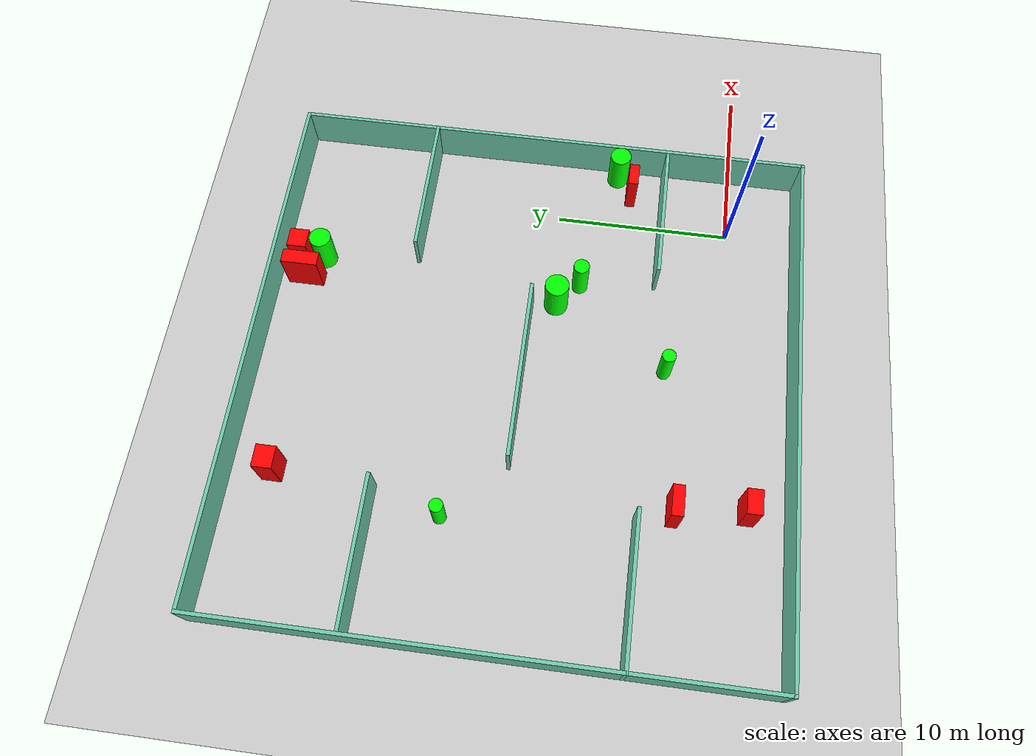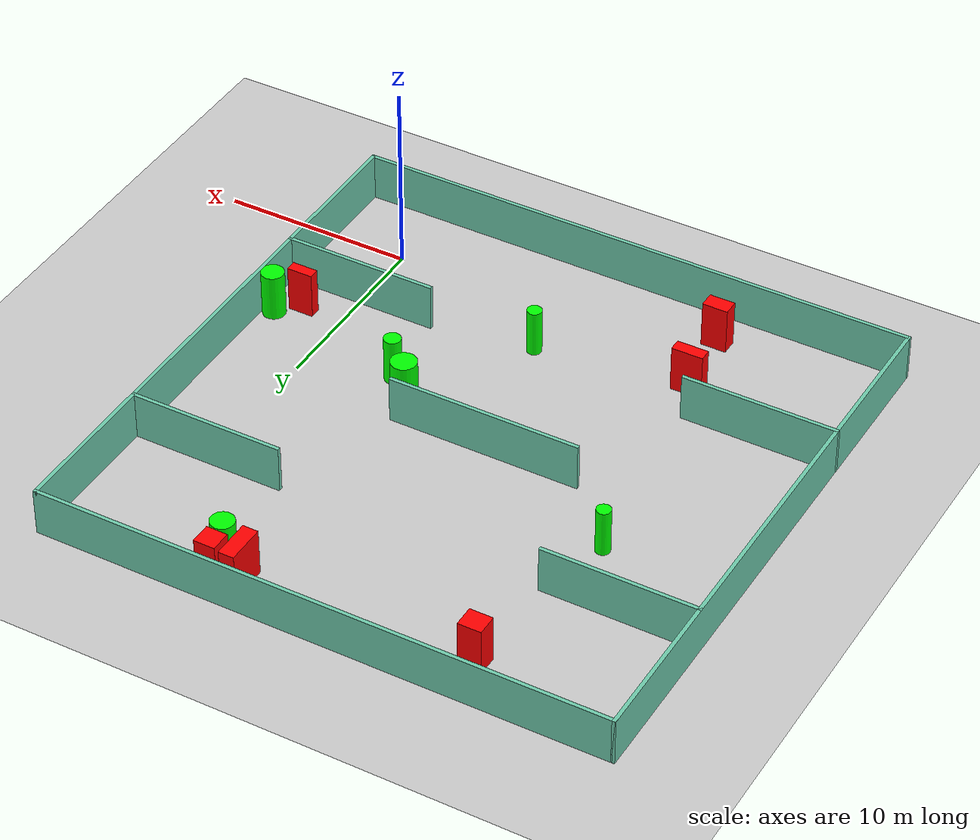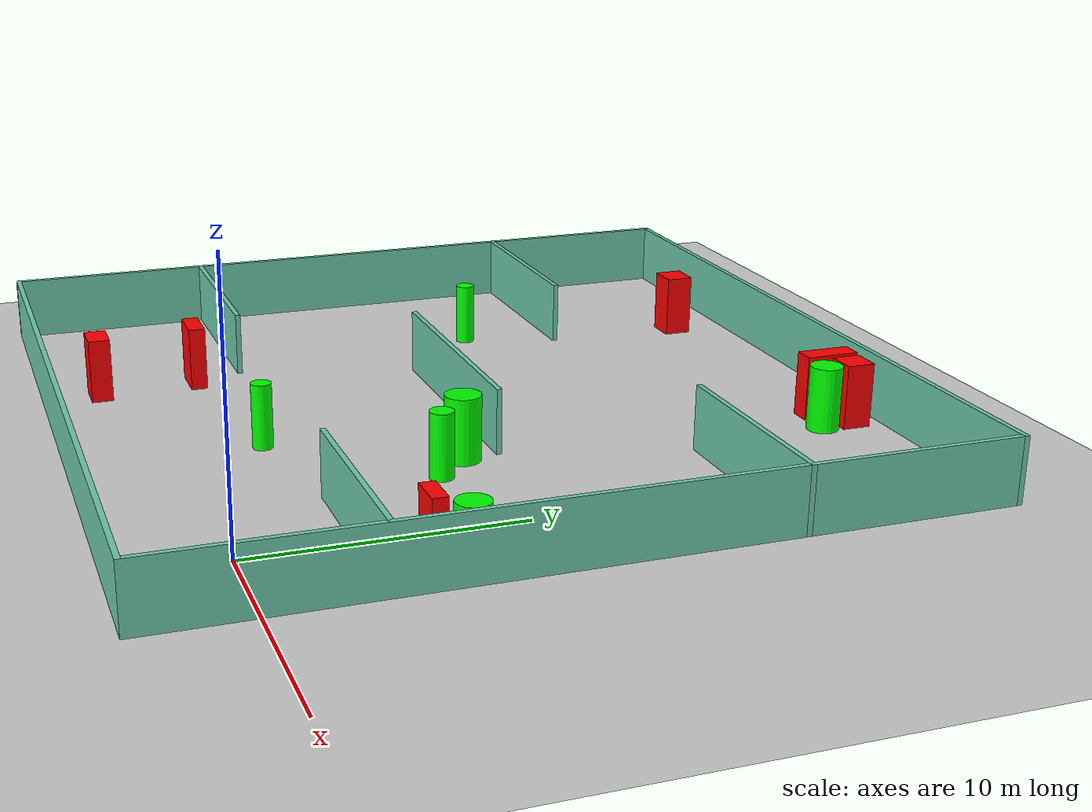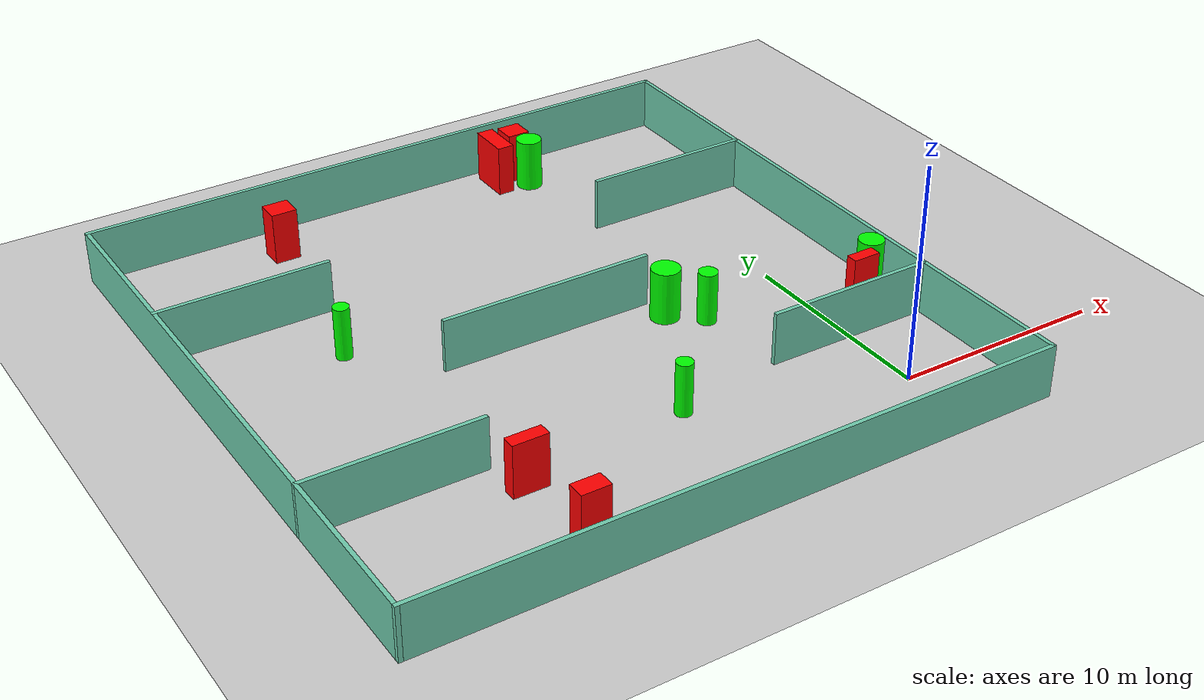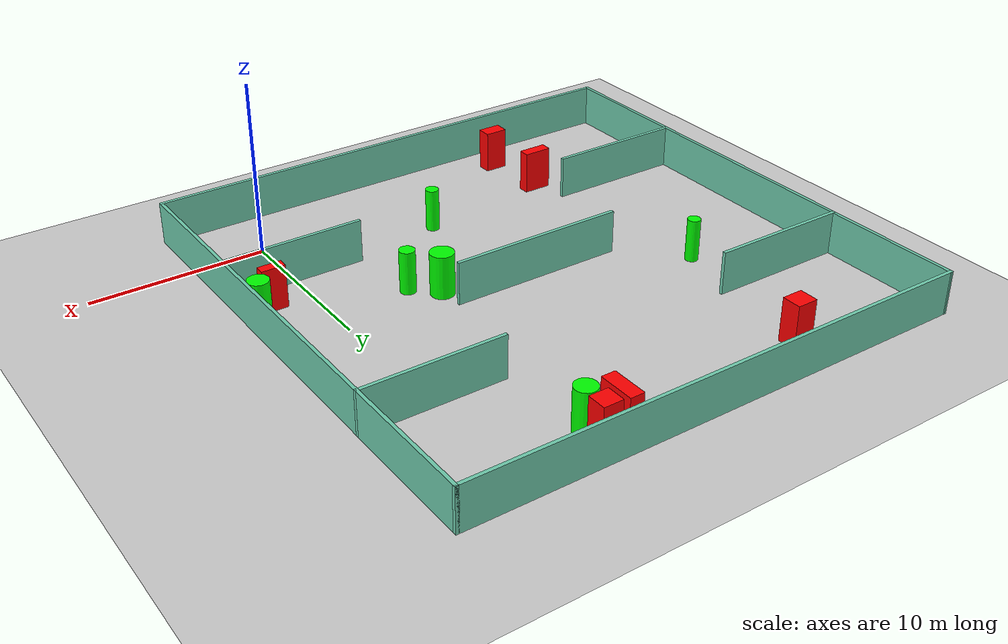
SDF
<sdf version="1.7">
 <world name="default">
  <light name="sun" type="directional">
   <pose>0 0 10 0 -0 0</pose>
   <diffuse>0.8 0.8 0.8 1</diffuse>
   <specular>0.2 0.2 0.2 1</specular>
   <attenuation>
    <range>1000</range>
    <constant>0.9</constant>
    <linear>0.01</linear>
    <quadratic>0.001</quadratic>
   </attenuation>
   <direction>-0.5 0.1 -0.9</direction>
   <spot><inner_angle>0</inner_angle><outer_angle>0</outer_angle><falloff>0</falloff></spot>
  </light>
  <model name="ground_plane">
   <static>1</static>
   <link name="link">
    <collision name="collision">
     <geometry><plane><normal>0 0 1</normal><size>100 100</size></plane></geometry>
     <surface>
      <contact><collide_bitmask>65535</collide_bitmask></contact>
      <friction><ode><mu>100</mu><mu2>50</mu2></ode></friction>
     </surface>
    </collision>
    <visual name="visual">
     <cast_shadows>0</cast_shadows>
     <geometry><plane><normal>0 0 1</normal><size>100 100</size></plane></geometry>
     <material>
      <script><uri>file://media/materials/scripts/gazebo.material</uri><name>Gazebo/Grey</name></script>
     </material>
    </visual>
   </link>
  </model>
  <gravity>0 0 -9.8</gravity>
  <magnetic_field>6e-06 2.3e-05 -4.2e-05</magnetic_field>
  <atmosphere type="adiabatic"/>
  <physics type="ode">
   <max_step_size>0.001</max_step_size>
   <real_time_factor>1</real_time_factor>
   <real_time_update_rate>1000</real_time_update_rate>
  </physics>
  <scene><ambient>0.4 0.4 0.4 1</ambient><background>0.7 0.7 0.7 1</background><shadows>1</shadows></scene>
  <spherical_coordinates>
   <surface_model>EARTH_WGS84</surface_model>
   <latitude_deg>0</latitude_deg>
   <longitude_deg>0</longitude_deg>
   <elevation>0</elevation>
   <heading_deg>0</heading_deg>
  </spherical_coordinates>
  <model name="my_base_walls">
   <link name="Wall_10">
    <collision name="Wall_10_Collision">
     <geometry><box><size>8.2 0.2 2.5</size></box></geometry>
     <pose>0 0 1.25 0 -0 0</pose>
    </collision>
    <visual name="Wall_10_Visual">
     <pose>0 0 1.25 0 -0 0</pose>
     <geometry><box><size>8.2 0.2 2.5</size></box></geometry>
     <material>
      <script><uri>file://media/materials/scripts/gazebo.material</uri><name>Gazebo/Grey</name></script>
      <ambient>0.435294 0.796078 0.67451 1</ambient>
     </material>
     <meta><layer>0</layer></meta>
    </visual>
    <pose>-11 -7 0 0 -0 0</pose>
   </link>
   <link name="Wall_12">
    <collision name="Wall_12_Collision">
     <geometry><box><size>8.2 0.2 2.5</size></box></geometry>
     <pose>0 0 1.25 0 -0 0</pose>
    </collision>
    <visual name="Wall_12_Visual">
     <pose>0 0 1.25 0 -0 0</pose>
     <geometry><box><size>8.2 0.2 2.5</size></box></geometry>
     <material>
      <script><uri>file://media/materials/scripts/gazebo.material</uri><name>Gazebo/Grey</name></script>
      <ambient>0.435294 0.796078 0.67451 1</ambient>
     </material>
     <meta><layer>0</layer></meta>
    </visual>
    <pose>-11 7 0 0 -0 0</pose>
   </link>
   <link name="Wall_14">
    <collision name="Wall_14_Collision">
     <geometry><box><size>8.2 0.2 2.5</size></box></geometry>
     <pose>0 0 1.25 0 -0 0</pose>
    </collision>
    <visual name="Wall_14_Visual">
     <pose>0 0 1.25 0 -0 0</pose>
     <geometry><box><size>8.2 0.2 2.5</size></box></geometry>
     <material>
      <script><uri>file://media/materials/scripts/gazebo.material</uri><name>Gazebo/Grey</name></script>
      <ambient>0.435294 0.796078 0.67451 1</ambient>
     </material>
     <meta><layer>0</layer></meta>
    </visual>
    <pose>11 7 0 0 -0 3.14159</pose>
   </link>
   <link name="Wall_16">
    <collision name="Wall_16_Collision">
     <geometry><box><size>10.2 0.2 2.5</size></box></geometry>
     <pose>0 0 1.25 0 -0 0</pose>
    </collision>
    <visual name="Wall_16_Visual">
     <pose>0 0 1.25 0 -0 0</pose>
     <geometry><box><size>10.2 0.2 2.5</size></box></geometry>
     <material>
      <script><uri>file://media/materials/scripts/gazebo.material</uri><name>Gazebo/Grey</name></script>
      <ambient>0.435294 0.796078 0.67451 1</ambient>
     </material>
     <meta><layer>0</layer></meta>
    </visual>
    <pose>0 0 0 0 -0 3.14159</pose>
   </link>
   <link name="Wall_2">
    <collision name="Wall_2_Collision">
     <geometry><box><size>30.2 0.2 2.5</size></box></geometry>
     <pose>0 0 1.25 0 -0 0</pose>
    </collision>
    <visual name="Wall_2_Visual">
     <pose>0 0 1.25 0 -0 0</pose>
     <geometry><box><size>30.2 0.2 2.5</size></box></geometry>
     <material>
      <script><uri>file://media/materials/scripts/gazebo.material</uri><name>Gazebo/Grey</name></script>
      <ambient>0.435294 0.796078 0.67451 1</ambient>
     </material>
     <meta><layer>0</layer></meta>
    </visual>
    <pose>0 -15 0 0 -0 3.14159</pose>
   </link>
   <link name="Wall_3">
    <collision name="Wall_3_Collision">
     <geometry><box><size>30.2 0.2 2.5</size></box></geometry>
     <pose>0 0 1.25 0 -0 0</pose>
    </collision>
    <visual name="Wall_3_Visual">
     <pose>0 0 1.25 0 -0 0</pose>
     <geometry><box><size>30.2 0.2 2.5</size></box></geometry>
     <material>
      <script><uri>file://media/materials/scripts/gazebo.material</uri><name>Gazebo/Grey</name></script>
      <ambient>0.435294 0.796078 0.67451 1</ambient>
     </material>
     <meta><layer>0</layer></meta>
    </visual>
    <pose>-15 0 0 0 -0 1.5708</pose>
   </link>
   <link name="Wall_4">
    <collision name="Wall_4_Collision">
     <geometry><box><size>30.2 0.2 2.5</size></box></geometry>
     <pose>0 0 1.25 0 -0 0</pose>
    </collision>
    <visual name="Wall_4_Visual">
     <pose>0 0 1.25 0 -0 0</pose>
     <geometry><box><size>30.2 0.2 2.5</size></box></geometry>
     <material>
      <script><uri>file://media/materials/scripts/gazebo.material</uri><name>Gazebo/Grey</name></script>
      <ambient>0.435294 0.796078 0.67451 1</ambient>
     </material>
     <meta><layer>0</layer></meta>
    </visual>
    <pose>0 15 0 0 -0 0</pose>
   </link>
   <link name="Wall_6">
    <collision name="Wall_6_Collision">
     <geometry><box><size>30.2 0.2 2.5</size></box></geometry>
     <pose>0 0 1.25 0 -0 0</pose>
    </collision>
    <visual name="Wall_6_Visual">
     <pose>0 0 1.25 0 -0 0</pose>
     <geometry><box><size>30.2 0.2 2.5</size></box></geometry>
     <material>
      <script><uri>file://media/materials/scripts/gazebo.material</uri><name>Gazebo/Grey</name></script>
      <ambient>0.435294 0.796078 0.67451 1</ambient>
     </material>
     <meta><layer>0</layer></meta>
    </visual>
    <pose>15 0 0 0 -0 1.5708</pose>
   </link>
   <link name="Wall_8">
    <collision name="Wall_8_Collision">
     <geometry><box><size>8.2 0.2 2.5</size></box></geometry>
     <pose>0 0 1.25 0 -0 0</pose>
    </collision>
    <visual name="Wall_8_Visual">
     <pose>0 0 1.25 0 -0 0</pose>
     <geometry><box><size>8.2 0.2 2.5</size></box></geometry>
     <material>
      <script><uri>file://media/materials/scripts/gazebo.material</uri><name>Gazebo/Grey</name></script>
      <ambient>0.435294 0.796078 0.67451 1</ambient>
     </material>
     <meta><layer>0</layer></meta>
    </visual>
    <pose>11 -7 0 0 -0 3.14159</pose>
   </link>
   <static>1</static>
   <pose>-11 11 0 0 -0 0</pose>
  </model>
  <model name="cylinder1">
   <static>1</static>
   <link name="link">
    <inertial>
     <mass>1</mass>
     <inertia><ixx>0.5</ixx><ixy>0</ixy><ixz>0</ixz><iyy>0.5</iyy><iyz>0</iyz><izz>1</izz></inertia>
    </inertial>
    <collision name="collision">
     <geometry><cylinder><radius>0.6784949300227379</radius><length>2.5</length></cylinder></geometry>
    </collision>
    <visual name="visual">
     <geometry><cylinder><radius>0.6784949300227379</radius><length>2.5</length></cylinder></geometry>
     <material>
      <ambient>0 1 0 1</ambient>
      <diffuse>0 1 0 1</diffuse>
      <specular>0.1 0.1 0.1 1</specular>
      <emissive>0 0 0 0</emissive>
     </material>
    </visual>
   </link>
   <pose>-5.835233674920712 9.589954621143322 1.25 0 0 0</pose>
  </model>
  <model name="cylinder2">
   <static>1</static>
   <link name="link">
    <inertial>
     <mass>1</mass>
     <inertia><ixx>0.5</ixx><ixy>0</ixy><ixz>0</ixz><iyy>0.5</iyy><iyz>0</iyz><izz>1</izz></inertia>
    </inertial>
    <collision name="collision">
     <geometry><cylinder><radius>0.6163219570794598</radius><length>2.5</length></cylinder></geometry>
    </collision>
    <visual name="visual">
     <geometry><cylinder><radius>0.6163219570794598</radius><length>2.5</length></cylinder></geometry>
     <material>
      <ambient>0 1 0 1</ambient>
      <diffuse>0 1 0 1</diffuse>
      <specular>0.1 0.1 0.1 1</specular>
      <emissive>0 0 0 0</emissive>
     </material>
    </visual>
   </link>
   <pose>-4.526041789028415 23.490929784408213 1.25 0 0 0</pose>
  </model>
  <model name="cylinder3">
   <static>1</static>
   <link name="link">
    <inertial>
     <mass>1</mass>
     <inertia><ixx>0.5</ixx><ixy>0</ixy><ixz>0</ixz><iyy>0.5</iyy><iyz>0</iyz><izz>1</izz></inertia>
    </inertial>
    <collision name="collision">
     <geometry><cylinder><radius>0.37320111128188654</radius><length>2.5</length></cylinder></geometry>
    </collision>
    <visual name="visual">
     <geometry><cylinder><radius>0.37320111128188654</radius><length>2.5</length></cylinder></geometry>
     <material>
      <ambient>0 1 0 1</ambient>
      <diffuse>0 1 0 1</diffuse>
      <specular>0.1 0.1 0.1 1</specular>
      <emissive>0 0 0 0</emissive>
     </material>
    </visual>
   </link>
   <pose>-19.17269495877135 14.266017183462075 1.25 0 0 0</pose>
  </model>
  <model name="cylinder4">
   <static>1</static>
   <link name="link">
    <inertial>
     <mass>1</mass>
     <inertia><ixx>0.5</ixx><ixy>0</ixy><ixz>0</ixz><iyy>0.5</iyy><iyz>0</iyz><izz>1</izz></inertia>
    </inertial>
    <collision name="collision">
     <geometry><cylinder><radius>0.603149404939135</radius><length>2.5</length></cylinder></geometry>
    </collision>
    <visual name="visual">
     <geometry><cylinder><radius>0.603149404939135</radius><length>2.5</length></cylinder></geometry>
     <material>
      <ambient>0 1 0 1</ambient>
      <diffuse>0 1 0 1</diffuse>
      <specular>0.1 0.1 0.1 1</specular>
      <emissive>0 0 0 0</emissive>
     </material>
    </visual>
   </link>
   <pose>3.327774973461672 6.7812902954853715 1.25 0 0 0</pose>
  </model>
  <model name="cylinder5">
   <static>1</static>
   <link name="link">
    <inertial>
     <mass>1</mass>
     <inertia><ixx>0.5</ixx><ixy>0</ixy><ixz>0</ixz><iyy>0.5</iyy><iyz>0</iyz><izz>1</izz></inertia>
    </inertial>
    <collision name="collision">
     <geometry><cylinder><radius>0.3850683905316514</radius><length>2.5</length></cylinder></geometry>
    </collision>
    <visual name="visual">
     <geometry><cylinder><radius>0.3850683905316514</radius><length>2.5</length></cylinder></geometry>
     <material>
      <ambient>0 1 0 1</ambient>
      <diffuse>0 1 0 1</diffuse>
      <specular>0.1 0.1 0.1 1</specular>
      <emissive>0 0 0 0</emissive>
     </material>
    </visual>
   </link>
   <pose>-9.345597419144163 3.054897291634499 1.25 0 0 0</pose>
  </model>
  <model name="cylinder6">
   <static>1</static>
   <link name="link">
    <inertial>
     <mass>1</mass>
     <inertia><ixx>0.5</ixx><ixy>0</ixy><ixz>0</ixz><iyy>0.5</iyy><iyz>0</iyz><izz>1</izz></inertia>
    </inertial>
    <collision name="collision">
     <geometry><cylinder><radius>0.4482898163139337</radius><length>2.5</length></cylinder></geometry>
    </collision>
    <visual name="visual">
     <geometry><cylinder><radius>0.4482898163139337</radius><length>2.5</length></cylinder></geometry>
     <material>
      <ambient>0 1 0 1</ambient>
      <diffuse>0 1 0 1</diffuse>
      <specular>0.1 0.1 0.1 1</specular>
      <emissive>0 0 0 0</emissive>
     </material>
    </visual>
   </link>
   <pose>-4.461144042015995 8.345805453473824 1.25 0 0 0</pose>
  </model>
  <model name="box1">
   <static>1</static>
   <link name="link">
    <inertial>
     <mass>1</mass>
     <inertia><ixx>0.083</ixx><ixy>0</ixy><ixz>0</ixz><iyy>0.083</iyy><iyz>0</iyz><izz>0.083</izz></inertia>
    </inertial>
    <collision name="collision">
     <geometry><box><size>1.3499756742404387 0.8343269135401554 2.5</size></box></geometry>
    </collision>
    <visual name="visual">
     <geometry><box><size>1.3499756742404387 0.8343269135401554 2.5</size></box></geometry>
     <material>
      <ambient>1 0 0 1</ambient>
      <diffuse>1 0 0 1</diffuse>
      <specular>0.1 0.1 0.1 1</specular>
      <emissive>0 0 0 0</emissive>
     </material>
    </visual>
    <sensor name="my_contact" type="contact">
     <contact><collision>box_collision</collision><topic>__default_topic__</topic></contact>
    </sensor>
   </link>
   <pose>-16.881791649761617 -1.8377074608302513 1.25 0 0 0</pose>
  </model>
  <model name="box2">
   <static>1</static>
   <link name="link">
    <inertial>
     <mass>1</mass>
     <inertia><ixx>0.083</ixx><ixy>0</ixy><ixz>0</ixz><iyy>0.083</iyy><iyz>0</iyz><izz>0.083</izz></inertia>
    </inertial>
    <collision name="collision">
     <geometry><box><size>1.119964008943036 1.0999130447967476 2.5</size></box></geometry>
    </collision>
    <visual name="visual">
     <geometry><box><size>1.119964008943036 1.0999130447967476 2.5</size></box></geometry>
     <material>
      <ambient>1 0 0 1</ambient>
      <diffuse>1 0 0 1</diffuse>
      <specular>0.1 0.1 0.1 1</specular>
      <emissive>0 0 0 0</emissive>
     </material>
    </visual>
    <sensor name="my_contact" type="contact">
     <contact><collision>box_collision</collision><topic>__default_topic__</topic></contact>
    </sensor>
   </link>
   <pose>-4.684187821385576 24.728461949602274 1.25 0 0 0</pose>
  </model>
  <model name="box3">
   <static>1</static>
   <link name="link">
    <inertial>
     <mass>1</mass>
     <inertia><ixx>0.083</ixx><ixy>0</ixy><ixz>0</ixz><iyy>0.083</iyy><iyz>0</iyz><izz>0.083</izz></inertia>
    </inertial>
    <collision name="collision">
     <geometry><box><size>1.2181265492134106 1.096620211282064 2.5</size></box></geometry>
    </collision>
    <visual name="visual">
     <geometry><box><size>1.2181265492134106 1.096620211282064 2.5</size></box></geometry>
     <material>
      <ambient>1 0 0 1</ambient>
      <diffuse>1 0 0 1</diffuse>
      <specular>0.1 0.1 0.1 1</specular>
      <emissive>0 0 0 0</emissive>
     </material>
    </visual>
    <sensor name="my_contact" type="contact">
     <contact><collision>box_collision</collision><topic>__default_topic__</topic></contact>
    </sensor>
   </link>
   <pose>-17.764228307068873 23.563710545317445 1.25 0 0 0</pose>
  </model>
  <model name="box4">
   <static>1</static>
   <link name="link">
    <inertial>
     <mass>1</mass>
     <inertia><ixx>0.083</ixx><ixy>0</ixy><ixz>0</ixz><iyy>0.083</iyy><iyz>0</iyz><izz>0.083</izz></inertia>
    </inertial>
    <collision name="collision">
     <geometry><box><size>0.8160717737423854 2.0725514122616477 2.5</size></box></geometry>
    </collision>
    <visual name="visual">
     <geometry><box><size>0.8160717737423854 2.0725514122616477 2.5</size></box></geometry>
     <material>
      <ambient>1 0 0 1</ambient>
      <diffuse>1 0 0 1</diffuse>
      <specular>0.1 0.1 0.1 1</specular>
      <emissive>0 0 0 0</emissive>
     </material>
    </visual>
    <sensor name="my_contact" type="contact">
     <contact><collision>box_collision</collision><topic>__default_topic__</topic></contact>
    </sensor>
   </link>
   <pose>-5.924477903483366 24.348571520984525 1.25 0 0 0</pose>
  </model>
  <model name="box5">
   <static>1</static>
   <link name="link">
    <inertial>
     <mass>1</mass>
     <inertia><ixx>0.083</ixx><ixy>0</ixy><ixz>0</ixz><iyy>0.083</iyy><iyz>0</iyz><izz>0.083</izz></inertia>
    </inertial>
    <collision name="collision">
     <geometry><box><size>1.3545996070654103 0.5654714065920842 2.5</size></box></geometry>
    </collision>
    <visual name="visual">
     <geometry><box><size>1.3545996070654103 0.5654714065920842 2.5</size></box></geometry>
     <material>
      <ambient>1 0 0 1</ambient>
      <diffuse>1 0 0 1</diffuse>
      <specular>0.1 0.1 0.1 1</specular>
      <emissive>0 0 0 0</emissive>
     </material>
    </visual>
    <sensor name="my_contact" type="contact">
     <contact><collision>box_collision</collision><topic>__default_topic__</topic></contact>
    </sensor>
   </link>
   <pose>2.1576753560708397 5.8983032093149905 1.25 0 0 0</pose>
  </model>
  <model name="box6">
   <static>1</static>
   <link name="link">
    <inertial>
     <mass>1</mass>
     <inertia><ixx>0.083</ixx><ixy>0</ixy><ixz>0</ixz><iyy>0.083</iyy><iyz>0</iyz><izz>0.083</izz></inertia>
    </inertial>
    <collision name="collision">
     <geometry><box><size>1.6636244476771498 0.6404255285884066 2.5</size></box></geometry>
    </collision>
    <visual name="visual">
     <geometry><box><size>1.6636244476771498 0.6404255285884066 2.5</size></box></geometry>
     <material>
      <ambient>1 0 0 1</ambient>
      <diffuse>1 0 0 1</diffuse>
      <specular>0.1 0.1 0.1 1</specular>
      <emissive>0 0 0 0</emissive>
     </material>
    </visual>
    <sensor name="my_contact" type="contact">
     <contact><collision>box_collision</collision><topic>__default_topic__</topic></contact>
    </sensor>
   </link>
   <pose>-17.306983046457518 2.052205863297054 1.25 0 0 0</pose>
  </model>
 </world>
</sdf>
